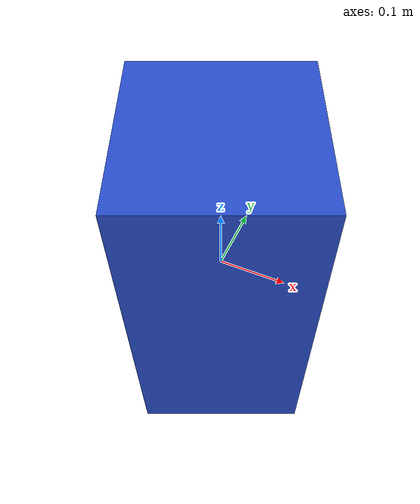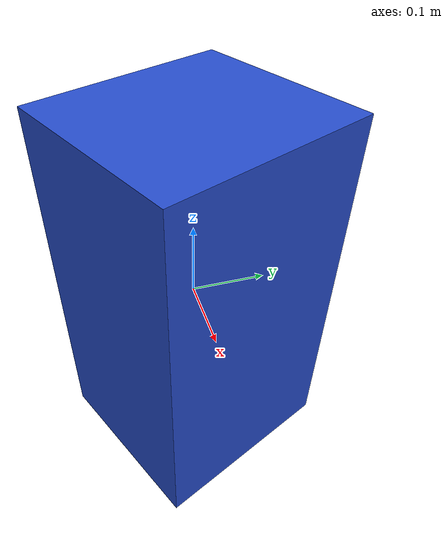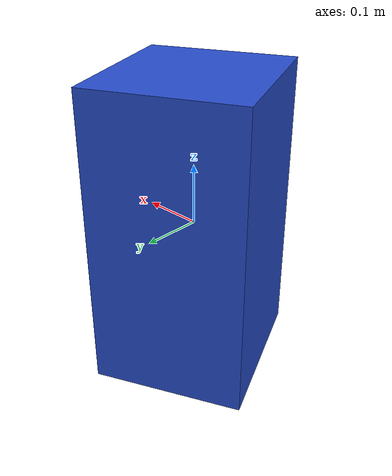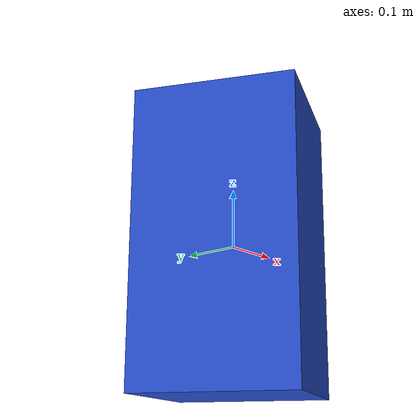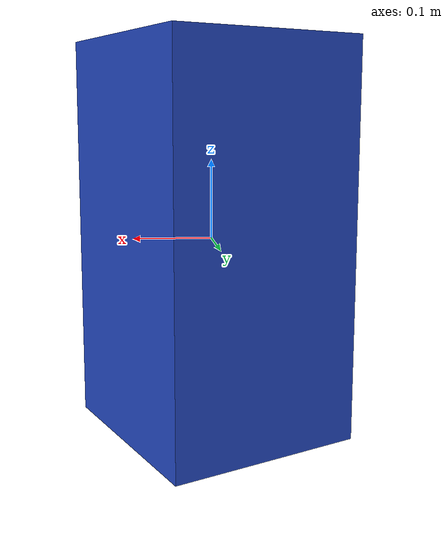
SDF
<sdf version="1.6"><model name="model_11"><link name="link"><pose>0 0 0 0 0 1.9878410136394755</pose><gravity>true</gravity><static>true</static><inertial><mass>1.0</mass><inertia><ixx>0.16666</ixx><ixy>0</ixy><ixz>0</ixz><iyy>0.16666</iyy><iyz>0</iyz><izz>0.16666</izz></inertia></inertial><collision name="collision"><geometry><box><size>0.2722173175533732 0.2512147190741315 0.5</size></box></geometry></collision><visual name="visual"><geometry><box><size>0.2722173175533732 0.2512147190741315 0.5</size></box></geometry><material><script><name>Gazebo/Blue</name><uri>file://media/materials/scripts/gazebo.material</uri></script></material></visual></link></model></sdf>
